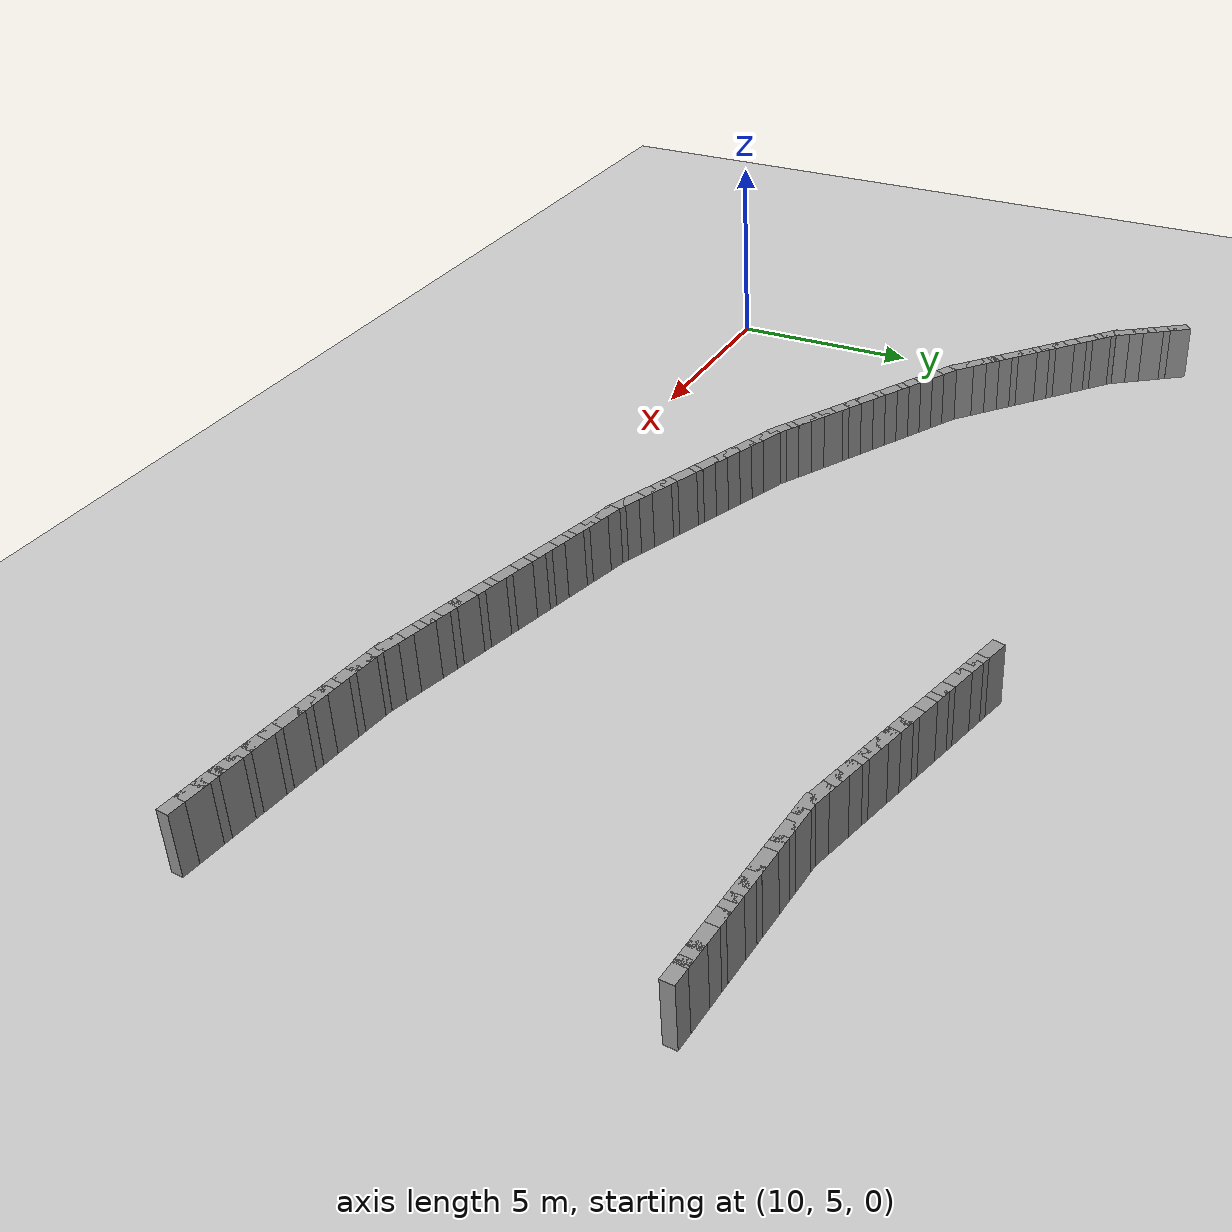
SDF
<sdf version="1.5">
 <world name="ellipse_loop">
  <include><uri>model://sun</uri></include>
  <include><uri>model://ground_plane</uri></include>
  <model name="curbL_27">
   <static>true</static>
   <pose>7.863 17.387 0.750 0 0 -0.961</pose>
   <link name="link">
    <collision name="col"><geometry><box><size>0.600 0.300 1.500</size></box></geometry></collision>
    <visual name="vis">
     <geometry><box><size>0.600 0.300 1.500</size></box></geometry>
     <material><ambient>0.6 0.6 0.6 1</ambient><diffuse>0.6 0.6 0.6 1</diffuse></material>
    </visual>
   </link>
  </model>
  <model name="curbL_28">
   <static>true</static>
   <pose>8.092 17.059 0.750 0 0 -0.961</pose>
   <link name="link">
    <collision name="col"><geometry><box><size>0.600 0.300 1.500</size></box></geometry></collision>
    <visual name="vis">
     <geometry><box><size>0.600 0.300 1.500</size></box></geometry>
     <material><ambient>0.6 0.6 0.6 1</ambient><diffuse>0.6 0.6 0.6 1</diffuse></material>
    </visual>
   </link>
  </model>
  <model name="curbL_29">
   <static>true</static>
   <pose>8.321 16.732 0.750 0 0 -0.961</pose>
   <link name="link">
    <collision name="col"><geometry><box><size>0.600 0.300 1.500</size></box></geometry></collision>
    <visual name="vis">
     <geometry><box><size>0.600 0.300 1.500</size></box></geometry>
     <material><ambient>0.6 0.6 0.6 1</ambient><diffuse>0.6 0.6 0.6 1</diffuse></material>
    </visual>
   </link>
  </model>
  <model name="curbL_30">
   <static>true</static>
   <pose>8.550 16.404 0.750 0 0 -0.961</pose>
   <link name="link">
    <collision name="col"><geometry><box><size>0.600 0.300 1.500</size></box></geometry></collision>
    <visual name="vis">
     <geometry><box><size>0.600 0.300 1.500</size></box></geometry>
     <material><ambient>0.6 0.6 0.6 1</ambient><diffuse>0.6 0.6 0.6 1</diffuse></material>
    </visual>
   </link>
  </model>
  <model name="curbL_31">
   <static>true</static>
   <pose>8.779 16.076 0.750 0 0 -0.961</pose>
   <link name="link">
    <collision name="col"><geometry><box><size>0.600 0.300 1.500</size></box></geometry></collision>
    <visual name="vis">
     <geometry><box><size>0.600 0.300 1.500</size></box></geometry>
     <material><ambient>0.6 0.6 0.6 1</ambient><diffuse>0.6 0.6 0.6 1</diffuse></material>
    </visual>
   </link>
  </model>
  <model name="curbL_32">
   <static>true</static>
   <pose>9.017 15.756 0.750 0 0 -0.722</pose>
   <link name="link">
    <collision name="col"><geometry><box><size>0.600 0.300 1.500</size></box></geometry></collision>
    <visual name="vis">
     <geometry><box><size>0.600 0.300 1.500</size></box></geometry>
     <material><ambient>0.6 0.6 0.6 1</ambient><diffuse>0.6 0.6 0.6 1</diffuse></material>
    </visual>
   </link>
  </model>
  <model name="curbL_33">
   <static>true</static>
   <pose>9.318 15.492 0.750 0 0 -0.722</pose>
   <link name="link">
    <collision name="col"><geometry><box><size>0.600 0.300 1.500</size></box></geometry></collision>
    <visual name="vis">
     <geometry><box><size>0.600 0.300 1.500</size></box></geometry>
     <material><ambient>0.6 0.6 0.6 1</ambient><diffuse>0.6 0.6 0.6 1</diffuse></material>
    </visual>
   </link>
  </model>
  <model name="curbL_34">
   <static>true</static>
   <pose>9.618 15.227 0.750 0 0 -0.722</pose>
   <link name="link">
    <collision name="col"><geometry><box><size>0.600 0.300 1.500</size></box></geometry></collision>
    <visual name="vis">
     <geometry><box><size>0.600 0.300 1.500</size></box></geometry>
     <material><ambient>0.6 0.6 0.6 1</ambient><diffuse>0.6 0.6 0.6 1</diffuse></material>
    </visual>
   </link>
  </model>
  <model name="curbL_35">
   <static>true</static>
   <pose>9.918 14.963 0.750 0 0 -0.722</pose>
   <link name="link">
    <collision name="col"><geometry><box><size>0.600 0.300 1.500</size></box></geometry></collision>
    <visual name="vis">
     <geometry><box><size>0.600 0.300 1.500</size></box></geometry>
     <material><ambient>0.6 0.6 0.6 1</ambient><diffuse>0.6 0.6 0.6 1</diffuse></material>
    </visual>
   </link>
  </model>
  <model name="curbL_36">
   <static>true</static>
   <pose>10.218 14.699 0.750 0 0 -0.722</pose>
   <link name="link">
    <collision name="col"><geometry><box><size>0.600 0.300 1.500</size></box></geometry></collision>
    <visual name="vis">
     <geometry><box><size>0.600 0.300 1.500</size></box></geometry>
     <material><ambient>0.6 0.6 0.6 1</ambient><diffuse>0.6 0.6 0.6 1</diffuse></material>
    </visual>
   </link>
  </model>
  <model name="curbL_37">
   <static>true</static>
   <pose>10.518 14.434 0.750 0 0 -0.722</pose>
   <link name="link">
    <collision name="col"><geometry><box><size>0.600 0.300 1.500</size></box></geometry></collision>
    <visual name="vis">
     <geometry><box><size>0.600 0.300 1.500</size></box></geometry>
     <material><ambient>0.6 0.6 0.6 1</ambient><diffuse>0.6 0.6 0.6 1</diffuse></material>
    </visual>
   </link>
  </model>
  <model name="curbL_38">
   <static>true</static>
   <pose>10.819 14.170 0.750 0 0 -0.722</pose>
   <link name="link">
    <collision name="col"><geometry><box><size>0.600 0.300 1.500</size></box></geometry></collision>
    <visual name="vis">
     <geometry><box><size>0.600 0.300 1.500</size></box></geometry>
     <material><ambient>0.6 0.6 0.6 1</ambient><diffuse>0.6 0.6 0.6 1</diffuse></material>
    </visual>
   </link>
  </model>
  <model name="curbL_39">
   <static>true</static>
   <pose>11.119 13.906 0.750 0 0 -0.722</pose>
   <link name="link">
    <collision name="col"><geometry><box><size>0.600 0.300 1.500</size></box></geometry></collision>
    <visual name="vis">
     <geometry><box><size>0.600 0.300 1.500</size></box></geometry>
     <material><ambient>0.6 0.6 0.6 1</ambient><diffuse>0.6 0.6 0.6 1</diffuse></material>
    </visual>
   </link>
  </model>
  <model name="curbL_40">
   <static>true</static>
   <pose>11.419 13.641 0.750 0 0 -0.722</pose>
   <link name="link">
    <collision name="col"><geometry><box><size>0.600 0.300 1.500</size></box></geometry></collision>
    <visual name="vis">
     <geometry><box><size>0.600 0.300 1.500</size></box></geometry>
     <material><ambient>0.6 0.6 0.6 1</ambient><diffuse>0.6 0.6 0.6 1</diffuse></material>
    </visual>
   </link>
  </model>
  <model name="curbL_41">
   <static>true</static>
   <pose>11.719 13.377 0.750 0 0 -0.722</pose>
   <link name="link">
    <collision name="col"><geometry><box><size>0.600 0.300 1.500</size></box></geometry></collision>
    <visual name="vis">
     <geometry><box><size>0.600 0.300 1.500</size></box></geometry>
     <material><ambient>0.6 0.6 0.6 1</ambient><diffuse>0.6 0.6 0.6 1</diffuse></material>
    </visual>
   </link>
  </model>
  <model name="curbL_42">
   <static>true</static>
   <pose>12.019 13.113 0.750 0 0 -0.722</pose>
   <link name="link">
    <collision name="col"><geometry><box><size>0.600 0.300 1.500</size></box></geometry></collision>
    <visual name="vis">
     <geometry><box><size>0.600 0.300 1.500</size></box></geometry>
     <material><ambient>0.6 0.6 0.6 1</ambient><diffuse>0.6 0.6 0.6 1</diffuse></material>
    </visual>
   </link>
  </model>
  <model name="curbL_43">
   <static>true</static>
   <pose>12.320 12.848 0.750 0 0 -0.722</pose>
   <link name="link">
    <collision name="col"><geometry><box><size>0.600 0.300 1.500</size></box></geometry></collision>
    <visual name="vis">
     <geometry><box><size>0.600 0.300 1.500</size></box></geometry>
     <material><ambient>0.6 0.6 0.6 1</ambient><diffuse>0.6 0.6 0.6 1</diffuse></material>
    </visual>
   </link>
  </model>
  <model name="curbL_44">
   <static>true</static>
   <pose>12.620 12.584 0.750 0 0 -0.722</pose>
   <link name="link">
    <collision name="col"><geometry><box><size>0.600 0.300 1.500</size></box></geometry></collision>
    <visual name="vis">
     <geometry><box><size>0.600 0.300 1.500</size></box></geometry>
     <material><ambient>0.6 0.6 0.6 1</ambient><diffuse>0.6 0.6 0.6 1</diffuse></material>
    </visual>
   </link>
  </model>
  <model name="curbL_45">
   <static>true</static>
   <pose>12.939 12.346 0.750 0 0 -0.520</pose>
   <link name="link">
    <collision name="col"><geometry><box><size>0.600 0.300 1.500</size></box></geometry></collision>
    <visual name="vis">
     <geometry><box><size>0.600 0.300 1.500</size></box></geometry>
     <material><ambient>0.6 0.6 0.6 1</ambient><diffuse>0.6 0.6 0.6 1</diffuse></material>
    </visual>
   </link>
  </model>
  <model name="curbL_46">
   <static>true</static>
   <pose>13.286 12.147 0.750 0 0 -0.520</pose>
   <link name="link">
    <collision name="col"><geometry><box><size>0.600 0.300 1.500</size></box></geometry></collision>
    <visual name="vis">
     <geometry><box><size>0.600 0.300 1.500</size></box></geometry>
     <material><ambient>0.6 0.6 0.6 1</ambient><diffuse>0.6 0.6 0.6 1</diffuse></material>
    </visual>
   </link>
  </model>
  <model name="curbL_47">
   <static>true</static>
   <pose>13.633 11.948 0.750 0 0 -0.520</pose>
   <link name="link">
    <collision name="col"><geometry><box><size>0.600 0.300 1.500</size></box></geometry></collision>
    <visual name="vis">
     <geometry><box><size>0.600 0.300 1.500</size></box></geometry>
     <material><ambient>0.6 0.6 0.6 1</ambient><diffuse>0.6 0.6 0.6 1</diffuse></material>
    </visual>
   </link>
  </model>
  <model name="curbL_48">
   <static>true</static>
   <pose>13.980 11.749 0.750 0 0 -0.520</pose>
   <link name="link">
    <collision name="col"><geometry><box><size>0.600 0.300 1.500</size></box></geometry></collision>
    <visual name="vis">
     <geometry><box><size>0.600 0.300 1.500</size></box></geometry>
     <material><ambient>0.6 0.6 0.6 1</ambient><diffuse>0.6 0.6 0.6 1</diffuse></material>
    </visual>
   </link>
  </model>
  <model name="curbL_49">
   <static>true</static>
   <pose>14.327 11.550 0.750 0 0 -0.520</pose>
   <link name="link">
    <collision name="col"><geometry><box><size>0.600 0.300 1.500</size></box></geometry></collision>
    <visual name="vis">
     <geometry><box><size>0.600 0.300 1.500</size></box></geometry>
     <material><ambient>0.6 0.6 0.6 1</ambient><diffuse>0.6 0.6 0.6 1</diffuse></material>
    </visual>
   </link>
  </model>
  <model name="curbL_50">
   <static>true</static>
   <pose>14.674 11.351 0.750 0 0 -0.520</pose>
   <link name="link">
    <collision name="col"><geometry><box><size>0.600 0.300 1.500</size></box></geometry></collision>
    <visual name="vis">
     <geometry><box><size>0.600 0.300 1.500</size></box></geometry>
     <material><ambient>0.6 0.6 0.6 1</ambient><diffuse>0.6 0.6 0.6 1</diffuse></material>
    </visual>
   </link>
  </model>
  <model name="curbL_51">
   <static>true</static>
   <pose>15.021 11.152 0.750 0 0 -0.520</pose>
   <link name="link">
    <collision name="col"><geometry><box><size>0.600 0.300 1.500</size></box></geometry></collision>
    <visual name="vis">
     <geometry><box><size>0.600 0.300 1.500</size></box></geometry>
     <material><ambient>0.6 0.6 0.6 1</ambient><diffuse>0.6 0.6 0.6 1</diffuse></material>
    </visual>
   </link>
  </model>
  <model name="curbL_52">
   <static>true</static>
   <pose>15.368 10.953 0.750 0 0 -0.520</pose>
   <link name="link">
    <collision name="col"><geometry><box><size>0.600 0.300 1.500</size></box></geometry></collision>
    <visual name="vis">
     <geometry><box><size>0.600 0.300 1.500</size></box></geometry>
     <material><ambient>0.6 0.6 0.6 1</ambient><diffuse>0.6 0.6 0.6 1</diffuse></material>
    </visual>
   </link>
  </model>
  <model name="curbL_53">
   <static>true</static>
   <pose>15.715 10.754 0.750 0 0 -0.520</pose>
   <link name="link">
    <collision name="col"><geometry><box><size>0.600 0.300 1.500</size></box></geometry></collision>
    <visual name="vis">
     <geometry><box><size>0.600 0.300 1.500</size></box></geometry>
     <material><ambient>0.6 0.6 0.6 1</ambient><diffuse>0.6 0.6 0.6 1</diffuse></material>
    </visual>
   </link>
  </model>
  <model name="curbL_54">
   <static>true</static>
   <pose>16.062 10.555 0.750 0 0 -0.520</pose>
   <link name="link">
    <collision name="col"><geometry><box><size>0.600 0.300 1.500</size></box></geometry></collision>
    <visual name="vis">
     <geometry><box><size>0.600 0.300 1.500</size></box></geometry>
     <material><ambient>0.6 0.6 0.6 1</ambient><diffuse>0.6 0.6 0.6 1</diffuse></material>
    </visual>
   </link>
  </model>
  <model name="curbL_55">
   <static>true</static>
   <pose>16.409 10.357 0.750 0 0 -0.520</pose>
   <link name="link">
    <collision name="col"><geometry><box><size>0.600 0.300 1.500</size></box></geometry></collision>
    <visual name="vis">
     <geometry><box><size>0.600 0.300 1.500</size></box></geometry>
     <material><ambient>0.6 0.6 0.6 1</ambient><diffuse>0.6 0.6 0.6 1</diffuse></material>
    </visual>
   </link>
  </model>
  <model name="curbL_56">
   <static>true</static>
   <pose>16.756 10.158 0.750 0 0 -0.520</pose>
   <link name="link">
    <collision name="col"><geometry><box><size>0.600 0.300 1.500</size></box></geometry></collision>
    <visual name="vis">
     <geometry><box><size>0.600 0.300 1.500</size></box></geometry>
     <material><ambient>0.6 0.6 0.6 1</ambient><diffuse>0.6 0.6 0.6 1</diffuse></material>
    </visual>
   </link>
  </model>
  <model name="curbL_57">
   <static>true</static>
   <pose>17.103 9.959 0.750 0 0 -0.520</pose>
   <link name="link">
    <collision name="col"><geometry><box><size>0.600 0.300 1.500</size></box></geometry></collision>
    <visual name="vis">
     <geometry><box><size>0.600 0.300 1.500</size></box></geometry>
     <material><ambient>0.6 0.6 0.6 1</ambient><diffuse>0.6 0.6 0.6 1</diffuse></material>
    </visual>
   </link>
  </model>
  <model name="curbL_58">
   <static>true</static>
   <pose>17.450 9.760 0.750 0 0 -0.520</pose>
   <link name="link">
    <collision name="col"><geometry><box><size>0.600 0.300 1.500</size></box></geometry></collision>
    <visual name="vis">
     <geometry><box><size>0.600 0.300 1.500</size></box></geometry>
     <material><ambient>0.6 0.6 0.6 1</ambient><diffuse>0.6 0.6 0.6 1</diffuse></material>
    </visual>
   </link>
  </model>
  <model name="curbL_59">
   <static>true</static>
   <pose>17.797 9.561 0.750 0 0 -0.520</pose>
   <link name="link">
    <collision name="col"><geometry><box><size>0.600 0.300 1.500</size></box></geometry></collision>
    <visual name="vis">
     <geometry><box><size>0.600 0.300 1.500</size></box></geometry>
     <material><ambient>0.6 0.6 0.6 1</ambient><diffuse>0.6 0.6 0.6 1</diffuse></material>
    </visual>
   </link>
  </model>
  <model name="curbL_60">
   <static>true</static>
   <pose>18.167 9.410 0.750 0 0 -0.376</pose>
   <link name="link">
    <collision name="col"><geometry><box><size>0.600 0.300 1.500</size></box></geometry></collision>
    <visual name="vis">
     <geometry><box><size>0.600 0.300 1.500</size></box></geometry>
     <material><ambient>0.6 0.6 0.6 1</ambient><diffuse>0.6 0.6 0.6 1</diffuse></material>
    </visual>
   </link>
  </model>
  <model name="curbL_61">
   <static>true</static>
   <pose>18.539 9.263 0.750 0 0 -0.376</pose>
   <link name="link">
    <collision name="col"><geometry><box><size>0.600 0.300 1.500</size></box></geometry></collision>
    <visual name="vis">
     <geometry><box><size>0.600 0.300 1.500</size></box></geometry>
     <material><ambient>0.6 0.6 0.6 1</ambient><diffuse>0.6 0.6 0.6 1</diffuse></material>
    </visual>
   </link>
  </model>
  <model name="curbL_62">
   <static>true</static>
   <pose>18.911 9.116 0.750 0 0 -0.376</pose>
   <link name="link">
    <collision name="col"><geometry><box><size>0.600 0.300 1.500</size></box></geometry></collision>
    <visual name="vis">
     <geometry><box><size>0.600 0.300 1.500</size></box></geometry>
     <material><ambient>0.6 0.6 0.6 1</ambient><diffuse>0.6 0.6 0.6 1</diffuse></material>
    </visual>
   </link>
  </model>
  <model name="curbL_63">
   <static>true</static>
   <pose>19.283 8.969 0.750 0 0 -0.376</pose>
   <link name="link">
    <collision name="col"><geometry><box><size>0.600 0.300 1.500</size></box></geometry></collision>
    <visual name="vis">
     <geometry><box><size>0.600 0.300 1.500</size></box></geometry>
     <material><ambient>0.6 0.6 0.6 1</ambient><diffuse>0.6 0.6 0.6 1</diffuse></material>
    </visual>
   </link>
  </model>
  <model name="curbL_64">
   <static>true</static>
   <pose>19.655 8.822 0.750 0 0 -0.376</pose>
   <link name="link">
    <collision name="col"><geometry><box><size>0.600 0.300 1.500</size></box></geometry></collision>
    <visual name="vis">
     <geometry><box><size>0.600 0.300 1.500</size></box></geometry>
     <material><ambient>0.6 0.6 0.6 1</ambient><diffuse>0.6 0.6 0.6 1</diffuse></material>
    </visual>
   </link>
  </model>
  <model name="curbL_65">
   <static>true</static>
   <pose>20.027 8.675 0.750 0 0 -0.376</pose>
   <link name="link">
    <collision name="col"><geometry><box><size>0.600 0.300 1.500</size></box></geometry></collision>
    <visual name="vis">
     <geometry><box><size>0.600 0.300 1.500</size></box></geometry>
     <material><ambient>0.6 0.6 0.6 1</ambient><diffuse>0.6 0.6 0.6 1</diffuse></material>
    </visual>
   </link>
  </model>
  <model name="curbL_66">
   <static>true</static>
   <pose>20.399 8.528 0.750 0 0 -0.376</pose>
   <link name="link">
    <collision name="col"><geometry><box><size>0.600 0.300 1.500</size></box></geometry></collision>
    <visual name="vis">
     <geometry><box><size>0.600 0.300 1.500</size></box></geometry>
     <material><ambient>0.6 0.6 0.6 1</ambient><diffuse>0.6 0.6 0.6 1</diffuse></material>
    </visual>
   </link>
  </model>
  <model name="curbL_67">
   <static>true</static>
   <pose>20.772 8.381 0.750 0 0 -0.376</pose>
   <link name="link">
    <collision name="col"><geometry><box><size>0.600 0.300 1.500</size></box></geometry></collision>
    <visual name="vis">
     <geometry><box><size>0.600 0.300 1.500</size></box></geometry>
     <material><ambient>0.6 0.6 0.6 1</ambient><diffuse>0.6 0.6 0.6 1</diffuse></material>
    </visual>
   </link>
  </model>
  <model name="curbL_68">
   <static>true</static>
   <pose>21.144 8.234 0.750 0 0 -0.376</pose>
   <link name="link">
    <collision name="col"><geometry><box><size>0.600 0.300 1.500</size></box></geometry></collision>
    <visual name="vis">
     <geometry><box><size>0.600 0.300 1.500</size></box></geometry>
     <material><ambient>0.6 0.6 0.6 1</ambient><diffuse>0.6 0.6 0.6 1</diffuse></material>
    </visual>
   </link>
  </model>
  <model name="curbL_69">
   <static>true</static>
   <pose>21.516 8.088 0.750 0 0 -0.376</pose>
   <link name="link">
    <collision name="col"><geometry><box><size>0.600 0.300 1.500</size></box></geometry></collision>
    <visual name="vis">
     <geometry><box><size>0.600 0.300 1.500</size></box></geometry>
     <material><ambient>0.6 0.6 0.6 1</ambient><diffuse>0.6 0.6 0.6 1</diffuse></material>
    </visual>
   </link>
  </model>
  <model name="curbL_70">
   <static>true</static>
   <pose>21.888 7.941 0.750 0 0 -0.376</pose>
   <link name="link">
    <collision name="col"><geometry><box><size>0.600 0.300 1.500</size></box></geometry></collision>
    <visual name="vis">
     <geometry><box><size>0.600 0.300 1.500</size></box></geometry>
     <material><ambient>0.6 0.6 0.6 1</ambient><diffuse>0.6 0.6 0.6 1</diffuse></material>
    </visual>
   </link>
  </model>
  <model name="curbL_71">
   <static>true</static>
   <pose>22.260 7.794 0.750 0 0 -0.376</pose>
   <link name="link">
    <collision name="col"><geometry><box><size>0.600 0.300 1.500</size></box></geometry></collision>
    <visual name="vis">
     <geometry><box><size>0.600 0.300 1.500</size></box></geometry>
     <material><ambient>0.6 0.6 0.6 1</ambient><diffuse>0.6 0.6 0.6 1</diffuse></material>
    </visual>
   </link>
  </model>
  <model name="curbL_72">
   <static>true</static>
   <pose>22.632 7.647 0.750 0 0 -0.376</pose>
   <link name="link">
    <collision name="col"><geometry><box><size>0.600 0.300 1.500</size></box></geometry></collision>
    <visual name="vis">
     <geometry><box><size>0.600 0.300 1.500</size></box></geometry>
     <material><ambient>0.6 0.6 0.6 1</ambient><diffuse>0.6 0.6 0.6 1</diffuse></material>
    </visual>
   </link>
  </model>
  <model name="curbL_73">
   <static>true</static>
   <pose>23.018 7.543 0.750 0 0 -0.242</pose>
   <link name="link">
    <collision name="col"><geometry><box><size>0.600 0.300 1.500</size></box></geometry></collision>
    <visual name="vis">
     <geometry><box><size>0.600 0.300 1.500</size></box></geometry>
     <material><ambient>0.6 0.6 0.6 1</ambient><diffuse>0.6 0.6 0.6 1</diffuse></material>
    </visual>
   </link>
  </model>
  <model name="curbL_74">
   <static>true</static>
   <pose>23.406 7.448 0.750 0 0 -0.242</pose>
   <link name="link">
    <collision name="col"><geometry><box><size>0.600 0.300 1.500</size></box></geometry></collision>
    <visual name="vis">
     <geometry><box><size>0.600 0.300 1.500</size></box></geometry>
     <material><ambient>0.6 0.6 0.6 1</ambient><diffuse>0.6 0.6 0.6 1</diffuse></material>
    </visual>
   </link>
  </model>
  <model name="curbL_75">
   <static>true</static>
   <pose>23.794 7.352 0.750 0 0 -0.242</pose>
   <link name="link">
    <collision name="col"><geometry><box><size>0.600 0.300 1.500</size></box></geometry></collision>
    <visual name="vis">
     <geometry><box><size>0.600 0.300 1.500</size></box></geometry>
     <material><ambient>0.6 0.6 0.6 1</ambient><diffuse>0.6 0.6 0.6 1</diffuse></material>
    </visual>
   </link>
  </model>
  <model name="curbL_76">
   <static>true</static>
   <pose>24.183 7.256 0.750 0 0 -0.242</pose>
   <link name="link">
    <collision name="col"><geometry><box><size>0.600 0.300 1.500</size></box></geometry></collision>
    <visual name="vis">
     <geometry><box><size>0.600 0.300 1.500</size></box></geometry>
     <material><ambient>0.6 0.6 0.6 1</ambient><diffuse>0.6 0.6 0.6 1</diffuse></material>
    </visual>
   </link>
  </model>
  <model name="curbL_77">
   <static>true</static>
   <pose>24.571 7.160 0.750 0 0 -0.242</pose>
   <link name="link">
    <collision name="col"><geometry><box><size>0.600 0.300 1.500</size></box></geometry></collision>
    <visual name="vis">
     <geometry><box><size>0.600 0.300 1.500</size></box></geometry>
     <material><ambient>0.6 0.6 0.6 1</ambient><diffuse>0.6 0.6 0.6 1</diffuse></material>
    </visual>
   </link>
  </model>
  <model name="curbL_78">
   <static>true</static>
   <pose>24.959 7.064 0.750 0 0 -0.242</pose>
   <link name="link">
    <collision name="col"><geometry><box><size>0.600 0.300 1.500</size></box></geometry></collision>
    <visual name="vis">
     <geometry><box><size>0.600 0.300 1.500</size></box></geometry>
     <material><ambient>0.6 0.6 0.6 1</ambient><diffuse>0.6 0.6 0.6 1</diffuse></material>
    </visual>
   </link>
  </model>
  <model name="curbL_79">
   <static>true</static>
   <pose>25.348 6.968 0.750 0 0 -0.242</pose>
   <link name="link">
    <collision name="col"><geometry><box><size>0.600 0.300 1.500</size></box></geometry></collision>
    <visual name="vis">
     <geometry><box><size>0.600 0.300 1.500</size></box></geometry>
     <material><ambient>0.6 0.6 0.6 1</ambient><diffuse>0.6 0.6 0.6 1</diffuse></material>
    </visual>
   </link>
  </model>
  <model name="curbL_80">
   <static>true</static>
   <pose>25.736 6.873 0.750 0 0 -0.242</pose>
   <link name="link">
    <collision name="col"><geometry><box><size>0.600 0.300 1.500</size></box></geometry></collision>
    <visual name="vis">
     <geometry><box><size>0.600 0.300 1.500</size></box></geometry>
     <material><ambient>0.6 0.6 0.6 1</ambient><diffuse>0.6 0.6 0.6 1</diffuse></material>
    </visual>
   </link>
  </model>
  <model name="curbL_81">
   <static>true</static>
   <pose>26.124 6.777 0.750 0 0 -0.242</pose>
   <link name="link">
    <collision name="col"><geometry><box><size>0.600 0.300 1.500</size></box></geometry></collision>
    <visual name="vis">
     <geometry><box><size>0.600 0.300 1.500</size></box></geometry>
     <material><ambient>0.6 0.6 0.6 1</ambient><diffuse>0.6 0.6 0.6 1</diffuse></material>
    </visual>
   </link>
  </model>
  <model name="curbL_82">
   <static>true</static>
   <pose>26.513 6.681 0.750 0 0 -0.242</pose>
   <link name="link">
    <collision name="col"><geometry><box><size>0.600 0.300 1.500</size></box></geometry></collision>
    <visual name="vis">
     <geometry><box><size>0.600 0.300 1.500</size></box></geometry>
     <material><ambient>0.6 0.6 0.6 1</ambient><diffuse>0.6 0.6 0.6 1</diffuse></material>
    </visual>
   </link>
  </model>
  <model name="curbL_83">
   <static>true</static>
   <pose>26.901 6.585 0.750 0 0 -0.242</pose>
   <link name="link">
    <collision name="col"><geometry><box><size>0.600 0.300 1.500</size></box></geometry></collision>
    <visual name="vis">
     <geometry><box><size>0.600 0.300 1.500</size></box></geometry>
     <material><ambient>0.6 0.6 0.6 1</ambient><diffuse>0.6 0.6 0.6 1</diffuse></material>
    </visual>
   </link>
  </model>
  <model name="curbL_84">
   <static>true</static>
   <pose>27.290 6.489 0.750 0 0 -0.242</pose>
   <link name="link">
    <collision name="col"><geometry><box><size>0.600 0.300 1.500</size></box></geometry></collision>
    <visual name="vis">
     <geometry><box><size>0.600 0.300 1.500</size></box></geometry>
     <material><ambient>0.6 0.6 0.6 1</ambient><diffuse>0.6 0.6 0.6 1</diffuse></material>
    </visual>
   </link>
  </model>
  <model name="curbL_85">
   <static>true</static>
   <pose>27.678 6.393 0.750 0 0 -0.242</pose>
   <link name="link">
    <collision name="col"><geometry><box><size>0.600 0.300 1.500</size></box></geometry></collision>
    <visual name="vis">
     <geometry><box><size>0.600 0.300 1.500</size></box></geometry>
     <material><ambient>0.6 0.6 0.6 1</ambient><diffuse>0.6 0.6 0.6 1</diffuse></material>
    </visual>
   </link>
  </model>
  <model name="curbL_86">
   <static>true</static>
   <pose>28.066 6.298 0.750 0 0 -0.242</pose>
   <link name="link">
    <collision name="col"><geometry><box><size>0.600 0.300 1.500</size></box></geometry></collision>
    <visual name="vis">
     <geometry><box><size>0.600 0.300 1.500</size></box></geometry>
     <material><ambient>0.6 0.6 0.6 1</ambient><diffuse>0.6 0.6 0.6 1</diffuse></material>
    </visual>
   </link>
  </model>
  <model name="curbL_87">
   <static>true</static>
   <pose>28.455 6.202 0.750 0 0 -0.242</pose>
   <link name="link">
    <collision name="col"><geometry><box><size>0.600 0.300 1.500</size></box></geometry></collision>
    <visual name="vis">
     <geometry><box><size>0.600 0.300 1.500</size></box></geometry>
     <material><ambient>0.6 0.6 0.6 1</ambient><diffuse>0.6 0.6 0.6 1</diffuse></material>
    </visual>
   </link>
  </model>
  <model name="curbL_88">
   <static>true</static>
   <pose>28.843 6.106 0.750 0 0 -0.242</pose>
   <link name="link">
    <collision name="col"><geometry><box><size>0.600 0.300 1.500</size></box></geometry></collision>
    <visual name="vis">
     <geometry><box><size>0.600 0.300 1.500</size></box></geometry>
     <material><ambient>0.6 0.6 0.6 1</ambient><diffuse>0.6 0.6 0.6 1</diffuse></material>
    </visual>
   </link>
  </model>
  <model name="curbL_89">
   <static>true</static>
   <pose>29.231 6.010 0.750 0 0 -0.242</pose>
   <link name="link">
    <collision name="col"><geometry><box><size>0.600 0.300 1.500</size></box></geometry></collision>
    <visual name="vis">
     <geometry><box><size>0.600 0.300 1.500</size></box></geometry>
     <material><ambient>0.6 0.6 0.6 1</ambient><diffuse>0.6 0.6 0.6 1</diffuse></material>
    </visual>
   </link>
  </model>
  <model name="curbL_90">
   <static>true</static>
   <pose>29.621 5.920 0.750 0 0 -0.109</pose>
   <link name="link">
    <collision name="col"><geometry><box><size>0.600 0.300 1.500</size></box></geometry></collision>
    <visual name="vis">
     <geometry><box><size>0.600 0.300 1.500</size></box></geometry>
     <material><ambient>0.6 0.6 0.6 1</ambient><diffuse>0.6 0.6 0.6 1</diffuse></material>
    </visual>
   </link>
  </model>
  <model name="curbL_91">
   <static>true</static>
   <pose>30.018 5.877 0.750 0 0 -0.109</pose>
   <link name="link">
    <collision name="col"><geometry><box><size>0.600 0.300 1.500</size></box></geometry></collision>
    <visual name="vis">
     <geometry><box><size>0.600 0.300 1.500</size></box></geometry>
     <material><ambient>0.6 0.6 0.6 1</ambient><diffuse>0.6 0.6 0.6 1</diffuse></material>
    </visual>
   </link>
  </model>
  <model name="curbL_92">
   <static>true</static>
   <pose>30.416 5.833 0.750 0 0 -0.109</pose>
   <link name="link">
    <collision name="col"><geometry><box><size>0.600 0.300 1.500</size></box></geometry></collision>
    <visual name="vis">
     <geometry><box><size>0.600 0.300 1.500</size></box></geometry>
     <material><ambient>0.6 0.6 0.6 1</ambient><diffuse>0.6 0.6 0.6 1</diffuse></material>
    </visual>
   </link>
  </model>
  <model name="curbL_93">
   <static>true</static>
   <pose>30.814 5.790 0.750 0 0 -0.109</pose>
   <link name="link">
    <collision name="col"><geometry><box><size>0.600 0.300 1.500</size></box></geometry></collision>
    <visual name="vis">
     <geometry><box><size>0.600 0.300 1.500</size></box></geometry>
     <material><ambient>0.6 0.6 0.6 1</ambient><diffuse>0.6 0.6 0.6 1</diffuse></material>
    </visual>
   </link>
  </model>
  <model name="curbL_94">
   <static>true</static>
   <pose>31.211 5.746 0.750 0 0 -0.109</pose>
   <link name="link">
    <collision name="col"><geometry><box><size>0.600 0.300 1.500</size></box></geometry></collision>
    <visual name="vis">
     <geometry><box><size>0.600 0.300 1.500</size></box></geometry>
     <material><ambient>0.6 0.6 0.6 1</ambient><diffuse>0.6 0.6 0.6 1</diffuse></material>
    </visual>
   </link>
  </model>
  <model name="curbL_95">
   <static>true</static>
   <pose>31.609 5.702 0.750 0 0 -0.109</pose>
   <link name="link">
    <collision name="col"><geometry><box><size>0.600 0.300 1.500</size></box></geometry></collision>
    <visual name="vis">
     <geometry><box><size>0.600 0.300 1.500</size></box></geometry>
     <material><ambient>0.6 0.6 0.6 1</ambient><diffuse>0.6 0.6 0.6 1</diffuse></material>
    </visual>
   </link>
  </model>
  <model name="curbL_96">
   <static>true</static>
   <pose>32.006 5.659 0.750 0 0 -0.109</pose>
   <link name="link">
    <collision name="col"><geometry><box><size>0.600 0.300 1.500</size></box></geometry></collision>
    <visual name="vis">
     <geometry><box><size>0.600 0.300 1.500</size></box></geometry>
     <material><ambient>0.6 0.6 0.6 1</ambient><diffuse>0.6 0.6 0.6 1</diffuse></material>
    </visual>
   </link>
  </model>
  <model name="curbL_97">
   <static>true</static>
   <pose>32.404 5.615 0.750 0 0 -0.109</pose>
   <link name="link">
    <collision name="col"><geometry><box><size>0.600 0.300 1.500</size></box></geometry></collision>
    <visual name="vis">
     <geometry><box><size>0.600 0.300 1.500</size></box></geometry>
     <material><ambient>0.6 0.6 0.6 1</ambient><diffuse>0.6 0.6 0.6 1</diffuse></material>
    </visual>
   </link>
  </model>
  <model name="curbL_98">
   <static>true</static>
   <pose>32.802 5.572 0.750 0 0 -0.109</pose>
   <link name="link">
    <collision name="col"><geometry><box><size>0.600 0.300 1.500</size></box></geometry></collision>
    <visual name="vis">
     <geometry><box><size>0.600 0.300 1.500</size></box></geometry>
     <material><ambient>0.6 0.6 0.6 1</ambient><diffuse>0.6 0.6 0.6 1</diffuse></material>
    </visual>
   </link>
  </model>
  <model name="curbL_99">
   <static>true</static>
   <pose>33.199 5.528 0.750 0 0 -0.109</pose>
   <link name="link">
    <collision name="col"><geometry><box><size>0.600 0.300 1.500</size></box></geometry></collision>
    <visual name="vis">
     <geometry><box><size>0.600 0.300 1.500</size></box></geometry>
     <material><ambient>0.6 0.6 0.6 1</ambient><diffuse>0.6 0.6 0.6 1</diffuse></material>
    </visual>
   </link>
  </model>
  <model name="curbL_100">
   <static>true</static>
   <pose>33.597 5.485 0.750 0 0 -0.109</pose>
   <link name="link">
    <collision name="col"><geometry><box><size>0.600 0.300 1.500</size></box></geometry></collision>
    <visual name="vis">
     <geometry><box><size>0.600 0.300 1.500</size></box></geometry>
     <material><ambient>0.6 0.6 0.6 1</ambient><diffuse>0.6 0.6 0.6 1</diffuse></material>
    </visual>
   </link>
  </model>
  <model name="curbL_101">
   <static>true</static>
   <pose>33.995 5.441 0.750 0 0 -0.109</pose>
   <link name="link">
    <collision name="col"><geometry><box><size>0.600 0.300 1.500</size></box></geometry></collision>
    <visual name="vis">
     <geometry><box><size>0.600 0.300 1.500</size></box></geometry>
     <material><ambient>0.6 0.6 0.6 1</ambient><diffuse>0.6 0.6 0.6 1</diffuse></material>
    </visual>
   </link>
  </model>
  <model name="curbL_102">
   <static>true</static>
   <pose>34.392 5.398 0.750 0 0 -0.109</pose>
   <link name="link">
    <collision name="col"><geometry><box><size>0.600 0.300 1.500</size></box></geometry></collision>
    <visual name="vis">
     <geometry><box><size>0.600 0.300 1.500</size></box></geometry>
     <material><ambient>0.6 0.6 0.6 1</ambient><diffuse>0.6 0.6 0.6 1</diffuse></material>
    </visual>
   </link>
  </model>
  <model name="curbL_103">
   <static>true</static>
   <pose>34.790 5.354 0.750 0 0 -0.109</pose>
   <link name="link">
    <collision name="col"><geometry><box><size>0.600 0.300 1.500</size></box></geometry></collision>
    <visual name="vis">
     <geometry><box><size>0.600 0.300 1.500</size></box></geometry>
     <material><ambient>0.6 0.6 0.6 1</ambient><diffuse>0.6 0.6 0.6 1</diffuse></material>
    </visual>
   </link>
  </model>
  <model name="curbR_229">
   <static>true</static>
   <pose>34.611 15.384 0.750 0 0 3.066</pose>
   <link name="link">
    <collision name="col"><geometry><box><size>0.600 0.300 1.500</size></box></geometry></collision>
    <visual name="vis">
     <geometry><box><size>0.600 0.300 1.500</size></box></geometry>
     <material><ambient>0.6 0.6 0.6 1</ambient><diffuse>0.6 0.6 0.6 1</diffuse></material>
    </visual>
   </link>
  </model>
  <model name="curbR_230">
   <static>true</static>
   <pose>34.212 15.415 0.750 0 0 3.066</pose>
   <link name="link">
    <collision name="col"><geometry><box><size>0.600 0.300 1.500</size></box></geometry></collision>
    <visual name="vis">
     <geometry><box><size>0.600 0.300 1.500</size></box></geometry>
     <material><ambient>0.6 0.6 0.6 1</ambient><diffuse>0.6 0.6 0.6 1</diffuse></material>
    </visual>
   </link>
  </model>
  <model name="curbR_231">
   <static>true</static>
   <pose>33.813 15.445 0.750 0 0 3.066</pose>
   <link name="link">
    <collision name="col"><geometry><box><size>0.600 0.300 1.500</size></box></geometry></collision>
    <visual name="vis">
     <geometry><box><size>0.600 0.300 1.500</size></box></geometry>
     <material><ambient>0.6 0.6 0.6 1</ambient><diffuse>0.6 0.6 0.6 1</diffuse></material>
    </visual>
   </link>
  </model>
  <model name="curbR_232">
   <static>true</static>
   <pose>33.414 15.475 0.750 0 0 3.066</pose>
   <link name="link">
    <collision name="col"><geometry><box><size>0.600 0.300 1.500</size></box></geometry></collision>
    <visual name="vis">
     <geometry><box><size>0.600 0.300 1.500</size></box></geometry>
     <material><ambient>0.6 0.6 0.6 1</ambient><diffuse>0.6 0.6 0.6 1</diffuse></material>
    </visual>
   </link>
  </model>
  <model name="curbR_233">
   <static>true</static>
   <pose>33.015 15.506 0.750 0 0 3.066</pose>
   <link name="link">
    <collision name="col"><geometry><box><size>0.600 0.300 1.500</size></box></geometry></collision>
    <visual name="vis">
     <geometry><box><size>0.600 0.300 1.500</size></box></geometry>
     <material><ambient>0.6 0.6 0.6 1</ambient><diffuse>0.6 0.6 0.6 1</diffuse></material>
    </visual>
   </link>
  </model>
  <model name="curbR_234">
   <static>true</static>
   <pose>32.616 15.536 0.750 0 0 3.066</pose>
   <link name="link">
    <collision name="col"><geometry><box><size>0.600 0.300 1.500</size></box></geometry></collision>
    <visual name="vis">
     <geometry><box><size>0.600 0.300 1.500</size></box></geometry>
     <material><ambient>0.6 0.6 0.6 1</ambient><diffuse>0.6 0.6 0.6 1</diffuse></material>
    </visual>
   </link>
  </model>
  <model name="curbR_235">
   <static>true</static>
   <pose>32.217 15.566 0.750 0 0 3.066</pose>
   <link name="link">
    <collision name="col"><geometry><box><size>0.600 0.300 1.500</size></box></geometry></collision>
    <visual name="vis">
     <geometry><box><size>0.600 0.300 1.500</size></box></geometry>
     <material><ambient>0.6 0.6 0.6 1</ambient><diffuse>0.6 0.6 0.6 1</diffuse></material>
    </visual>
   </link>
  </model>
  <model name="curbR_236">
   <static>true</static>
   <pose>31.819 15.597 0.750 0 0 3.066</pose>
   <link name="link">
    <collision name="col"><geometry><box><size>0.600 0.300 1.500</size></box></geometry></collision>
    <visual name="vis">
     <geometry><box><size>0.600 0.300 1.500</size></box></geometry>
     <material><ambient>0.6 0.6 0.6 1</ambient><diffuse>0.6 0.6 0.6 1</diffuse></material>
    </visual>
   </link>
  </model>
  <model name="curbR_237">
   <static>true</static>
   <pose>31.420 15.627 0.750 0 0 3.066</pose>
   <link name="link">
    <collision name="col"><geometry><box><size>0.600 0.300 1.500</size></box></geometry></collision>
    <visual name="vis">
     <geometry><box><size>0.600 0.300 1.500</size></box></geometry>
     <material><ambient>0.6 0.6 0.6 1</ambient><diffuse>0.6 0.6 0.6 1</diffuse></material>
    </visual>
   </link>
  </model>
  <model name="curbR_238">
   <static>true</static>
   <pose>31.021 15.657 0.750 0 0 3.066</pose>
   <link name="link">
    <collision name="col"><geometry><box><size>0.600 0.300 1.500</size></box></geometry></collision>
    <visual name="vis">
     <geometry><box><size>0.600 0.300 1.500</size></box></geometry>
     <material><ambient>0.6 0.6 0.6 1</ambient><diffuse>0.6 0.6 0.6 1</diffuse></material>
    </visual>
   </link>
  </model>
  <model name="curbR_239">
   <static>true</static>
   <pose>30.622 15.688 0.750 0 0 3.066</pose>
   <link name="link">
    <collision name="col"><geometry><box><size>0.600 0.300 1.500</size></box></geometry></collision>
    <visual name="vis">
     <geometry><box><size>0.600 0.300 1.500</size></box></geometry>
     <material><ambient>0.6 0.6 0.6 1</ambient><diffuse>0.6 0.6 0.6 1</diffuse></material>
    </visual>
   </link>
  </model>
  <model name="curbR_240">
   <static>true</static>
   <pose>30.223 15.718 0.750 0 0 3.066</pose>
   <link name="link">
    <collision name="col"><geometry><box><size>0.600 0.300 1.500</size></box></geometry></collision>
    <visual name="vis">
     <geometry><box><size>0.600 0.300 1.500</size></box></geometry>
     <material><ambient>0.6 0.6 0.6 1</ambient><diffuse>0.6 0.6 0.6 1</diffuse></material>
    </visual>
   </link>
  </model>
  <model name="curbR_241">
   <static>true</static>
   <pose>29.834 15.806 0.750 0 0 2.873</pose>
   <link name="link">
    <collision name="col"><geometry><box><size>0.600 0.300 1.500</size></box></geometry></collision>
    <visual name="vis">
     <geometry><box><size>0.600 0.300 1.500</size></box></geometry>
     <material><ambient>0.6 0.6 0.6 1</ambient><diffuse>0.6 0.6 0.6 1</diffuse></material>
    </visual>
   </link>
  </model>
  <model name="curbR_242">
   <static>true</static>
   <pose>29.449 15.912 0.750 0 0 2.873</pose>
   <link name="link">
    <collision name="col"><geometry><box><size>0.600 0.300 1.500</size></box></geometry></collision>
    <visual name="vis">
     <geometry><box><size>0.600 0.300 1.500</size></box></geometry>
     <material><ambient>0.6 0.6 0.6 1</ambient><diffuse>0.6 0.6 0.6 1</diffuse></material>
    </visual>
   </link>
  </model>
  <model name="curbR_243">
   <static>true</static>
   <pose>29.063 16.018 0.750 0 0 2.873</pose>
   <link name="link">
    <collision name="col"><geometry><box><size>0.600 0.300 1.500</size></box></geometry></collision>
    <visual name="vis">
     <geometry><box><size>0.600 0.300 1.500</size></box></geometry>
     <material><ambient>0.6 0.6 0.6 1</ambient><diffuse>0.6 0.6 0.6 1</diffuse></material>
    </visual>
   </link>
  </model>
  <model name="curbR_244">
   <static>true</static>
   <pose>28.677 16.124 0.750 0 0 2.873</pose>
   <link name="link">
    <collision name="col"><geometry><box><size>0.600 0.300 1.500</size></box></geometry></collision>
    <visual name="vis">
     <geometry><box><size>0.600 0.300 1.500</size></box></geometry>
     <material><ambient>0.6 0.6 0.6 1</ambient><diffuse>0.6 0.6 0.6 1</diffuse></material>
    </visual>
   </link>
  </model>
  <model name="curbR_245">
   <static>true</static>
   <pose>28.292 16.230 0.750 0 0 2.873</pose>
   <link name="link">
    <collision name="col"><geometry><box><size>0.600 0.300 1.500</size></box></geometry></collision>
    <visual name="vis">
     <geometry><box><size>0.600 0.300 1.500</size></box></geometry>
     <material><ambient>0.6 0.6 0.6 1</ambient><diffuse>0.6 0.6 0.6 1</diffuse></material>
    </visual>
   </link>
  </model>
  <model name="curbR_246">
   <static>true</static>
   <pose>27.906 16.336 0.750 0 0 2.873</pose>
   <link name="link">
    <collision name="col"><geometry><box><size>0.600 0.300 1.500</size></box></geometry></collision>
    <visual name="vis">
     <geometry><box><size>0.600 0.300 1.500</size></box></geometry>
     <material><ambient>0.6 0.6 0.6 1</ambient><diffuse>0.6 0.6 0.6 1</diffuse></material>
    </visual>
   </link>
  </model>
  <model name="curbR_247">
   <static>true</static>
   <pose>27.520 16.442 0.750 0 0 2.873</pose>
   <link name="link">
    <collision name="col"><geometry><box><size>0.600 0.300 1.500</size></box></geometry></collision>
    <visual name="vis">
     <geometry><box><size>0.600 0.300 1.500</size></box></geometry>
     <material><ambient>0.6 0.6 0.6 1</ambient><diffuse>0.6 0.6 0.6 1</diffuse></material>
    </visual>
   </link>
  </model>
  <model name="curbR_248">
   <static>true</static>
   <pose>27.134 16.548 0.750 0 0 2.873</pose>
   <link name="link">
    <collision name="col"><geometry><box><size>0.600 0.300 1.500</size></box></geometry></collision>
    <visual name="vis">
     <geometry><box><size>0.600 0.300 1.500</size></box></geometry>
     <material><ambient>0.6 0.6 0.6 1</ambient><diffuse>0.6 0.6 0.6 1</diffuse></material>
    </visual>
   </link>
  </model>
  <model name="curbR_249">
   <static>true</static>
   <pose>26.749 16.654 0.750 0 0 2.873</pose>
   <link name="link">
    <collision name="col"><geometry><box><size>0.600 0.300 1.500</size></box></geometry></collision>
    <visual name="vis">
     <geometry><box><size>0.600 0.300 1.500</size></box></geometry>
     <material><ambient>0.6 0.6 0.6 1</ambient><diffuse>0.6 0.6 0.6 1</diffuse></material>
    </visual>
   </link>
  </model>
  <model name="curbR_250">
   <static>true</static>
   <pose>26.363 16.760 0.750 0 0 2.873</pose>
   <link name="link">
    <collision name="col"><geometry><box><size>0.600 0.300 1.500</size></box></geometry></collision>
    <visual name="vis">
     <geometry><box><size>0.600 0.300 1.500</size></box></geometry>
     <material><ambient>0.6 0.6 0.6 1</ambient><diffuse>0.6 0.6 0.6 1</diffuse></material>
    </visual>
   </link>
  </model>
  <model name="curbR_251">
   <static>true</static>
   <pose>25.977 16.866 0.750 0 0 2.873</pose>
   <link name="link">
    <collision name="col"><geometry><box><size>0.600 0.300 1.500</size></box></geometry></collision>
    <visual name="vis">
     <geometry><box><size>0.600 0.300 1.500</size></box></geometry>
     <material><ambient>0.6 0.6 0.6 1</ambient><diffuse>0.6 0.6 0.6 1</diffuse></material>
    </visual>
   </link>
  </model>
  <model name="curbR_252">
   <static>true</static>
   <pose>25.592 16.972 0.750 0 0 2.873</pose>
   <link name="link">
    <collision name="col"><geometry><box><size>0.600 0.300 1.500</size></box></geometry></collision>
    <visual name="vis">
     <geometry><box><size>0.600 0.300 1.500</size></box></geometry>
     <material><ambient>0.6 0.6 0.6 1</ambient><diffuse>0.6 0.6 0.6 1</diffuse></material>
    </visual>
   </link>
  </model>
  <model name="curbR_253">
   <static>true</static>
   <pose>25.206 17.078 0.750 0 0 2.873</pose>
   <link name="link">
    <collision name="col"><geometry><box><size>0.600 0.300 1.500</size></box></geometry></collision>
    <visual name="vis">
     <geometry><box><size>0.600 0.300 1.500</size></box></geometry>
     <material><ambient>0.6 0.6 0.6 1</ambient><diffuse>0.6 0.6 0.6 1</diffuse></material>
    </visual>
   </link>
  </model>
  <model name="curbR_254">
   <static>true</static>
   <pose>24.820 17.184 0.750 0 0 2.873</pose>
   <link name="link">
    <collision name="col"><geometry><box><size>0.600 0.300 1.500</size></box></geometry></collision>
    <visual name="vis">
     <geometry><box><size>0.600 0.300 1.500</size></box></geometry>
     <material><ambient>0.6 0.6 0.6 1</ambient><diffuse>0.6 0.6 0.6 1</diffuse></material>
    </visual>
   </link>
  </model>
  <model name="curbR_255">
   <static>true</static>
   <pose>24.435 17.290 0.750 0 0 2.873</pose>
   <link name="link">
    <collision name="col"><geometry><box><size>0.600 0.300 1.500</size></box></geometry></collision>
    <visual name="vis">
     <geometry><box><size>0.600 0.300 1.500</size></box></geometry>
     <material><ambient>0.6 0.6 0.6 1</ambient><diffuse>0.6 0.6 0.6 1</diffuse></material>
    </visual>
   </link>
  </model>
 </world>
</sdf>
